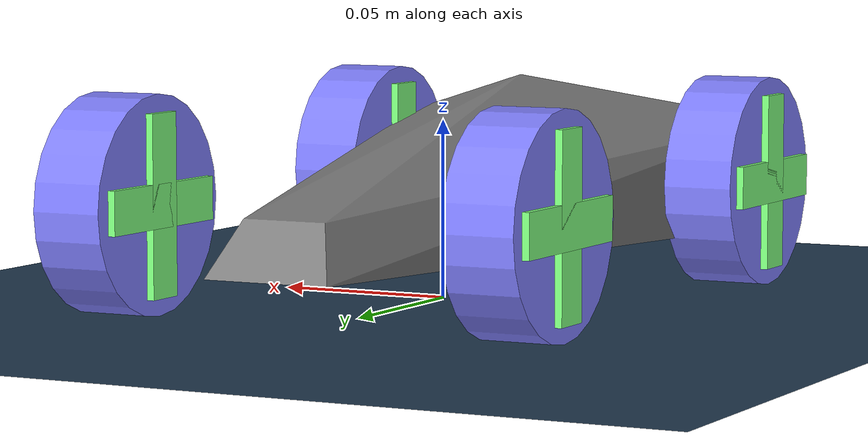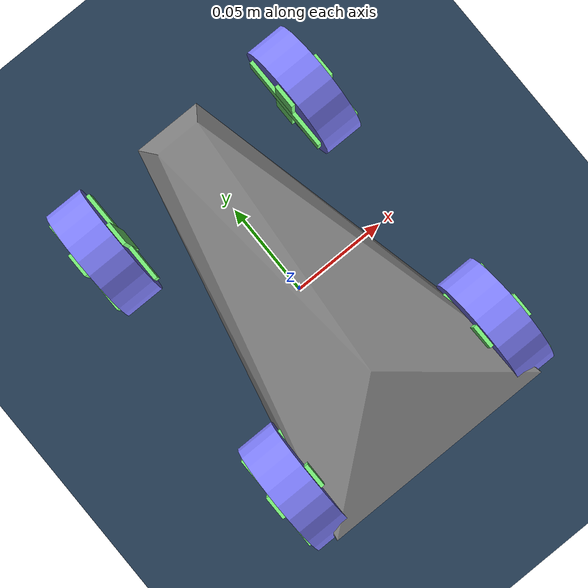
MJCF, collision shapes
<mujoco>
  <compiler assetdir="assets"/>

  <include file="car.xml"/>

  <asset>
    <texture name="grid" type="2d" builtin="checker" width="512" height="512" rgb1=".1 .2 .3" rgb2=".2 .3 .4"/>
    <material name="grid" texture="grid" texrepeat="1 1" texuniform="true" reflectance=".2"/>

    <mesh name="traffic_light" scale="0.15 0.15 0.15" file="traffic_light.obj" />
    <mesh name="traffic_light_gate" file="traffic_light_gate.obj" />

    <texture name="traffic_light" type="2d" file="traffic_light.png"/>
    <material name="traffic_light" texture="traffic_light" />

    <texture name="asphalt" type="2d" file="asphalt.png"/> <!-- https://opengameart.org/content/asphalt -->
    <material name="road" shininess="0.001" texrepeat="1 1" texuniform="true"  texture="asphalt"  />
  </asset>

  <worldbody>
    <light name="light1" pos="0 0 2" dir="0 0 -2" directional="true"/>

    <body name="traffic_light_gate" pos="0 5 0.2" euler="1 0 0">
      <geom type="mesh" mesh="traffic_light_gate" material="road" mass="1" priority="0" contype="0" conaffinity="0"  />
      <geom type="mesh" mesh="traffic_light" material="traffic_light" pos="0 0 0.47" mass="1" priority="0" contype="0" conaffinity="0"  />
    </body>

    <geom type="plane" size="50 50 .01" material="grid" euler="3 0 0"/>
    <geom type="plane" pos="0 0 0.001" size="0.5 6 .01" material="road" priority="0" contype="0" conaffinity="0" euler="3 0 0"/>
  </worldbody>

</mujoco>

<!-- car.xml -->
<mujoco>
  <compiler autolimits="true"/>

  <option timestep="0.01"/>
  <asset>
    <mesh name="chasis" scale=".01 .006 .0015" vertex=" 9   2   0
              -10  10  10
               9  -2   0
               10  3  -10
               10 -3  -10
              -8   10 -10
              -10 -10  10
              -8  -10 -10
              -5   0   20"/>
  </asset>

  <default>
    <joint damping=".01" actuatorfrcrange="-50 50"/>
    <default class="wheel">
      <geom type="cylinder" size=".03 .01" rgba=".5 .5 1 1" mass="1" condim="6"/>
    </default>
    <default class="decor">
      <site type="box" rgba=".5 1 .5 1"/>
    </default>
  </default>

  <worldbody>
    <body name="car" pos="0 0 .03" euler="0 0 90">
      <freejoint/>
      <light name="top light" pos="0 0 2" mode="trackcom" diffuse=".4 .4 .4"/>
      <geom name="chasis" type="mesh" mesh="chasis" mass="500"/>
      <light name="front light" pos=".1 0 .02" dir="2 0 -1" diffuse="1 1 1"/>
      <camera name="camera1" pos="-0.1 0 0.05" fovy="90" euler="180 -80 90"/>
      <body name="front left wheel" pos=".07 .06 0"  euler="-90 0 0">
        <joint name="left forward"/>
        <joint name="front left turn" axis="0 1 0"/>
        <geom class="wheel"/>
        <site class="decor" size=".006 .025 .012"/>
        <site class="decor" size=".025 .006 .012"/>
      </body>
      <body name="front right wheel" pos=".07 -.06 0" euler="-90 0 0">
        <joint name="right forward"/>
        <joint name="front right turn" axis="0 1 0"/>
        <geom class="wheel"/>
        <site class="decor" size=".006 .025 .012"/>
        <site class="decor" size=".025 .006 .012"/>
      </body>
      <body name="rear left wheel" pos="-.07 .06 0" euler="-90 0 0">
        <joint name="rear left"/>
        <geom class="wheel"/>
        <site class="decor" size=".006 .025 .012"/>
        <site class="decor" size=".025 .006 .012"/>
      </body>
      <body name="rear right wheel" pos="-.07 -.06 0" euler="-90 0 0">
        <joint name="rear right"/>
        <geom class="wheel"/>
        <site class="decor" size=".006 .025 .012"/>
        <site class="decor" size=".025 .006 .012"/>
      </body>
    </body>
  </worldbody>

  <tendon>
    <fixed name="forward">
      <joint joint="left forward" coef=".5"/>
      <joint joint="right forward" coef=".5"/>
    </fixed>
    <fixed name="turn">
      <joint joint="front left turn" coef=".5"/>
      <joint joint="front right turn" coef=".5"/>
    </fixed>
  </tendon>

  <actuator>
    <motor name="forward" tendon="forward" ctrlrange="-100 100"/>
    <motor name="turn" tendon="turn" ctrlrange="-5 5"/>
  </actuator>

  <sensor>
    <jointactuatorfrc name="right forward" joint="right forward"/>
    <jointactuatorfrc name="left forward" joint="left forward"/>
  </sensor>
</mujoco>
